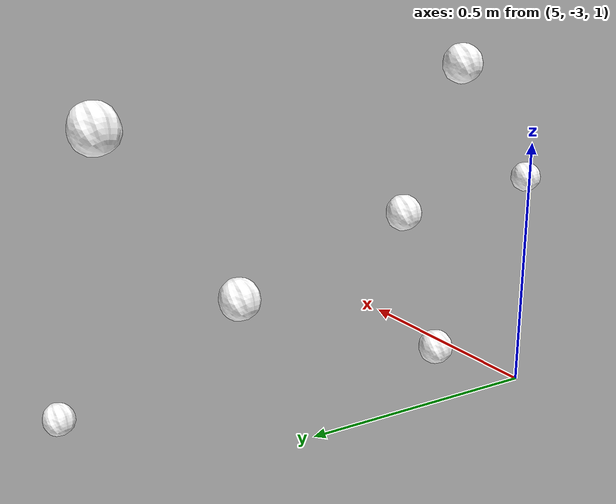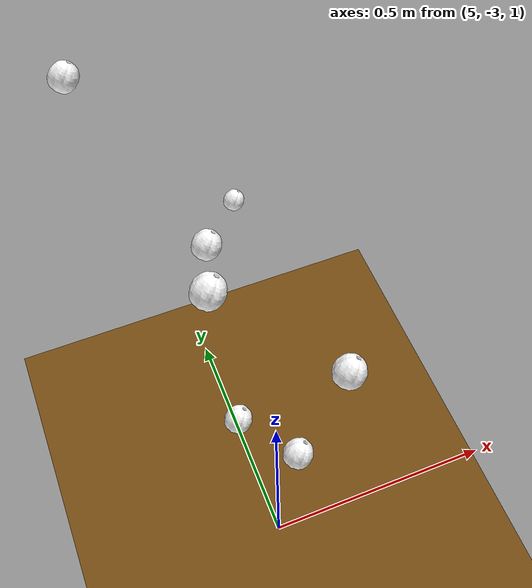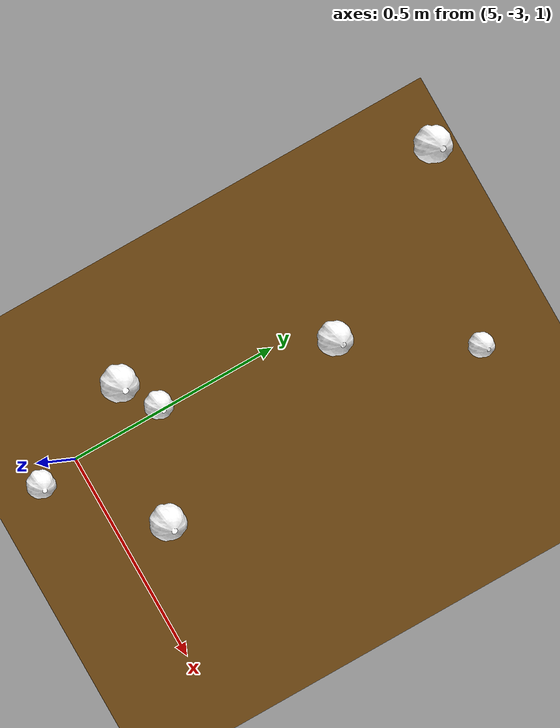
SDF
<sdf version="1.10">
 <world name="field">
  <model name="ground_plane">
   <static>true</static>
   <pose>0 0 -0.025 0 0 0</pose>
   <link name="ground_link">
    <collision name="collision"><geometry><box><size>22 14 0.05</size></box></geometry></collision>
    <visual name="visual">
     <geometry><box><size>22 14 0.05</size></box></geometry>
     <material><ambient>0.45 0.29 0.07 1</ambient><diffuse>0.45 0.29 0.07 1</diffuse></material>
    </visual>
   </link>
  </model>
  <model name="tomato_53_fruit_0">
   <static>true</static>
   <pose>4.9933125070232274 -2.7733645847344239 1.1219723409843241 0 0 0</pose>
   <link name="fruit_link">
    <collision name="fruit_collision">
     <geometry><sphere><radius>0.034856571929430334</radius></sphere></geometry>
    </collision>
    <visual name="fruit_visual">
     <geometry>
      <mesh>
       <uri>model://tomato_fruit/meshes/fruit.dae</uri>
       <scale>0.069713143858860668 0.069713143858860668 0.069713143858860668</scale>
      </mesh>
     </geometry>
     <material>
      <ambient>1 1 1 1</ambient>
      <diffuse>1 1 1 1</diffuse>
      <pbr>
       <metal>
        <albedo_map>model://tomato_0/materials/textures/AG15frt1.png</albedo_map>
        <metalness>0</metalness>
        <roughness>0.4</roughness>
       </metal>
      </pbr>
     </material>
    </visual>
   </link>
  </model>
  <model name="tomato_53_fruit_1">
   <static>true</static>
   <pose>5.2172467802620091 -2.8586754822179108 1.3333721757962751 0 0 0</pose>
   <link name="fruit_link">
    <collision name="fruit_collision">
     <geometry><sphere><radius>0.041184979125509932</radius></sphere></geometry>
    </collision>
    <visual name="fruit_visual">
     <geometry>
      <mesh>
       <uri>model://tomato_fruit/meshes/fruit.dae</uri>
       <scale>0.082369958251019865 0.082369958251019865 0.082369958251019865</scale>
      </mesh>
     </geometry>
     <material>
      <ambient>1 1 1 1</ambient>
      <diffuse>1 1 1 1</diffuse>
      <pbr>
       <metal>
        <albedo_map>model://tomato_0/materials/textures/AG15frt1.png</albedo_map>
        <metalness>0</metalness>
        <roughness>0.4</roughness>
       </metal>
      </pbr>
     </material>
    </visual>
   </link>
  </model>
  <model name="tomato_53_fruit_2">
   <static>true</static>
   <pose>4.9612465028532462 -2.7804887599146517 1.6617909500790744 0 0 0</pose>
   <link name="fruit_link">
    <collision name="fruit_collision">
     <geometry><sphere><radius>0.037557580346787321</radius></sphere></geometry>
    </collision>
    <visual name="fruit_visual">
     <geometry>
      <mesh>
       <uri>model://tomato_fruit/meshes/fruit.dae</uri>
       <scale>0.075115160693574642 0.075115160693574642 0.075115160693574642</scale>
      </mesh>
     </geometry>
     <material>
      <ambient>1 1 1 1</ambient>
      <diffuse>1 1 1 1</diffuse>
      <pbr>
       <metal>
        <albedo_map>model://tomato_0/materials/textures/AG15frt4.png</albedo_map>
        <metalness>0</metalness>
        <roughness>0.4</roughness>
       </metal>
      </pbr>
     </material>
    </visual>
   </link>
  </model>
  <model name="tomato_53_fruit_5">
   <static>true</static>
   <pose>5.0332903326625473 -3.0241529245059642 1.425808196543408 0 0 0</pose>
   <link name="fruit_link">
    <collision name="fruit_collision">
     <geometry><sphere><radius>0.031211857161161878</radius></sphere></geometry>
    </collision>
    <visual name="fruit_visual">
     <geometry>
      <mesh>
       <uri>model://tomato_fruit/meshes/fruit.dae</uri>
       <scale>0.062423714322323756 0.062423714322323756 0.062423714322323756</scale>
      </mesh>
     </geometry>
     <material>
      <ambient>1 1 1 1</ambient>
      <diffuse>1 1 1 1</diffuse>
      <pbr>
       <metal>
        <albedo_map>model://tomato_0/materials/textures/AG15frt1.png</albedo_map>
        <metalness>0</metalness>
        <roughness>0.4</roughness>
       </metal>
      </pbr>
     </material>
    </visual>
   </link>
  </model>
  <model name="tomato_54_fruit_0">
   <static>true</static>
   <pose>5.0617324582940251 -2.3877736703042345 1.2666330791729645 0 0 0</pose>
   <link name="fruit_link">
    <collision name="fruit_collision">
     <geometry><sphere><radius>0.040682291946394604</radius></sphere></geometry>
    </collision>
    <visual name="fruit_visual">
     <geometry>
      <mesh>
       <uri>model://tomato_fruit/meshes/fruit.dae</uri>
       <scale>0.081364583892789208 0.081364583892789208 0.081364583892789208</scale>
      </mesh>
     </geometry>
     <material>
      <ambient>1 1 1 1</ambient>
      <diffuse>1 1 1 1</diffuse>
      <pbr>
       <metal>
        <albedo_map>model://tomato_0/materials/textures/AG15frt1.png</albedo_map>
        <metalness>0</metalness>
        <roughness>0.4</roughness>
       </metal>
      </pbr>
     </material>
    </visual>
   </link>
  </model>
  <model name="tomato_54_fruit_2">
   <static>true</static>
   <pose>4.8618587051822271 -2.0910918209641185 1.6058446209916184 0 0 0</pose>
   <link name="fruit_link">
    <collision name="fruit_collision">
     <geometry><sphere><radius>0.03827002842584698</radius></sphere></geometry>
    </collision>
    <visual name="fruit_visual">
     <geometry>
      <mesh>
       <uri>model://tomato_fruit/meshes/fruit.dae</uri>
       <scale>0.076540056851693961 0.076540056851693961 0.076540056851693961</scale>
      </mesh>
     </geometry>
     <material>
      <ambient>1 1 1 1</ambient>
      <diffuse>1 1 1 1</diffuse>
      <pbr>
       <metal>
        <albedo_map>model://tomato_0/materials/textures/AG15frt1.png</albedo_map>
        <metalness>0</metalness>
        <roughness>0.4</roughness>
       </metal>
      </pbr>
     </material>
    </visual>
   </link>
  </model>
  <model name="tomato_54_fruit_5">
   <static>true</static>
   <pose>5.2228139415775248 -2.0996688281650724 1.0419866845795926 0 0 0</pose>
   <link name="fruit_link">
    <collision name="fruit_collision">
     <geometry><sphere><radius>0.03195173180360765</radius></sphere></geometry>
    </collision>
    <visual name="fruit_visual">
     <geometry>
      <mesh>
       <uri>model://tomato_fruit/meshes/fruit.dae</uri>
       <scale>0.0639034636072153 0.0639034636072153 0.0639034636072153</scale>
      </mesh>
     </geometry>
     <material>
      <ambient>1 1 1 1</ambient>
      <diffuse>1 1 1 1</diffuse>
      <pbr>
       <metal>
        <albedo_map>model://tomato_0/materials/textures/AG15frt1.png</albedo_map>
        <metalness>0</metalness>
        <roughness>0.4</roughness>
       </metal>
      </pbr>
     </material>
    </visual>
   </link>
  </model>
 </world>
</sdf>
